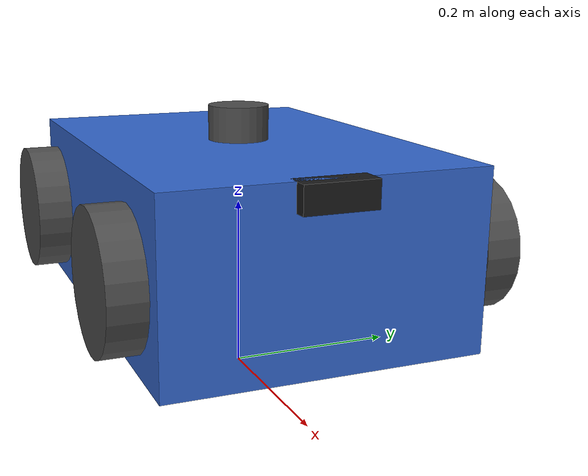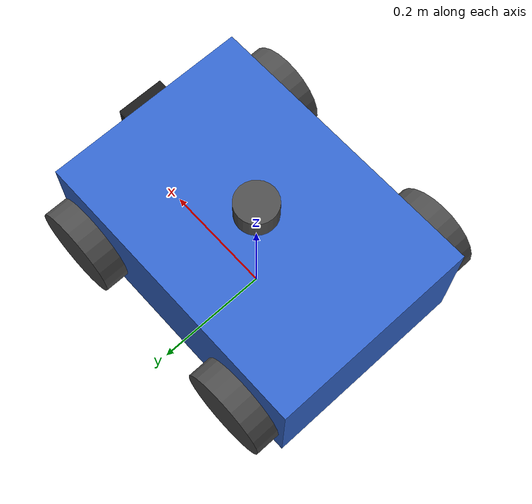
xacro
<?xml version="1.0"?>
<!--
  ScottBot URDF — UCR food delivery robot
  Mecanum-wheel holonomic base with camera and 2-D LIDAR for Gazebo simulation.
-->
<robot xmlns:xacro="http://www.ros.org/wiki/xacro" name="scottbot">

  <!-- ==================== Properties ==================== -->
  <xacro:property name="body_length"  value="0.50"/>
  <xacro:property name="body_width"   value="0.35"/>
  <xacro:property name="body_height"  value="0.20"/>
  <xacro:property name="body_mass"    value="10.0"/>

  <xacro:property name="wheel_radius" value="0.075"/>
  <xacro:property name="wheel_width"  value="0.04"/>
  <xacro:property name="wheel_mass"   value="0.5"/>
  <xacro:property name="wheel_separation" value="0.40"/>  <!-- lateral distance between left & right wheels -->
  <xacro:property name="wheelbase"          value="0.34"/>  <!-- longitudinal distance between front & rear axles -->

  <!-- ==================== Materials ==================== -->
  <material name="blue">
    <color rgba="0.2 0.4 0.8 1.0"/>
  </material>
  <material name="dark_grey">
    <color rgba="0.3 0.3 0.3 1.0"/>
  </material>
  <material name="black">
    <color rgba="0.1 0.1 0.1 1.0"/>
  </material>

  <!-- ==================== Macros ==================== -->

  <!-- Inertia helpers -->
  <xacro:macro name="box_inertia" params="m x y z">
    <inertial>
      <mass value="${m}"/>
      <inertia ixx="${m*(y*y+z*z)/12}" ixy="0" ixz="0"
               iyy="${m*(x*x+z*z)/12}" iyz="0"
               izz="${m*(x*x+y*y)/12}"/>
    </inertial>
  </xacro:macro>

  <xacro:macro name="cylinder_inertia" params="m r h">
    <inertial>
      <mass value="${m}"/>
      <inertia ixx="${m*(3*r*r+h*h)/12}" ixy="0" ixz="0"
               iyy="${m*(3*r*r+h*h)/12}" iyz="0"
               izz="${m*r*r/2}"/>
    </inertial>
  </xacro:macro>

  <xacro:macro name="sphere_inertia" params="m r">
    <inertial>
      <mass value="${m}"/>
      <inertia ixx="${2*m*r*r/5}" ixy="0" ixz="0"
               iyy="${2*m*r*r/5}" iyz="0"
               izz="${2*m*r*r/5}"/>
    </inertial>
  </xacro:macro>

  <!-- Mecanum wheel macro (4 corners) -->
  <xacro:macro name="mecanum_wheel" params="prefix x_offset y_offset">
    <link name="${prefix}_wheel_link">
      <visual>
        <geometry>
          <cylinder radius="${wheel_radius}" length="${wheel_width}"/>
        </geometry>
        <material name="dark_grey"/>
      </visual>
      <collision>
        <geometry>
          <sphere radius="${wheel_radius}"/>
        </geometry>
        <surface>
          <friction>
            <ode>
              <mu>0.1</mu>
              <mu2>0.1</mu2>
              <slip1>1.0</slip1>
              <slip2>1.0</slip2>
            </ode>
          </friction>
        </surface>
      </collision>
      <xacro:cylinder_inertia m="${wheel_mass}" r="${wheel_radius}" h="${wheel_width}"/>
    </link>

    <joint name="${prefix}_wheel_joint" type="continuous">
      <parent link="base_link"/>
      <child link="${prefix}_wheel_link"/>
      <origin xyz="${x_offset} ${y_offset} 0" rpy="${-pi/2} 0 0"/>
      <axis xyz="0 0 1"/>
      <dynamics damping="0.05" friction="0.05"/>
    </joint>
  </xacro:macro>

  <!-- ==================== Links & Joints ==================== -->

  <!-- Footprint (ground-level reference) -->
  <link name="base_footprint"/>

  <!-- Base link (chassis) -->
  <link name="base_link">
    <visual>
      <geometry>
        <box size="${body_length} ${body_width} ${body_height}"/>
      </geometry>
      <material name="blue"/>
    </visual>
    <collision>
      <geometry>
        <box size="${body_length} ${body_width} ${body_height}"/>
      </geometry>
    </collision>
    <xacro:box_inertia m="${body_mass}" x="${body_length}" y="${body_width}" z="${body_height}"/>
  </link>

  <joint name="base_footprint_joint" type="fixed">
    <parent link="base_footprint"/>
    <child link="base_link"/>
    <origin xyz="0 0 ${wheel_radius + body_height/2}" rpy="0 0 0"/>
  </joint>

  <!-- Mecanum wheels (front-left, front-right, rear-left, rear-right) -->
  <xacro:mecanum_wheel prefix="front_left"  x_offset="${wheelbase/2}"  y_offset="${wheel_separation/2}"/>
  <xacro:mecanum_wheel prefix="front_right" x_offset="${wheelbase/2}"  y_offset="${-wheel_separation/2}"/>
  <xacro:mecanum_wheel prefix="rear_left"   x_offset="${-wheelbase/2}" y_offset="${wheel_separation/2}"/>
  <xacro:mecanum_wheel prefix="rear_right"  x_offset="${-wheelbase/2}" y_offset="${-wheel_separation/2}"/>

  <!-- ==================== Sensors ==================== -->

  <!-- Camera -->
  <link name="camera_link">
    <visual>
      <geometry>
        <box size="0.03 0.08 0.03"/>
      </geometry>
      <material name="black"/>
    </visual>
    <collision>
      <geometry>
        <box size="0.03 0.08 0.03"/>
      </geometry>
    </collision>
    <xacro:box_inertia m="0.05" x="0.03" y="0.08" z="0.03"/>
  </link>

  <joint name="camera_joint" type="fixed">
    <parent link="base_link"/>
    <child link="camera_link"/>
    <origin xyz="${body_length/2} 0 ${body_height/2 - 0.015}" rpy="0 0 0"/>
  </joint>

  <!-- Camera optical frame (Z-forward convention) -->
  <link name="camera_optical_link"/>

  <joint name="camera_optical_joint" type="fixed">
    <parent link="camera_link"/>
    <child link="camera_optical_link"/>
    <origin xyz="0 0 0" rpy="${-pi/2} 0 ${-pi/2}"/>
  </joint>

  <!-- LIDAR -->
  <link name="lidar_link">
    <visual>
      <geometry>
        <cylinder radius="0.035" length="0.04"/>
      </geometry>
      <material name="dark_grey"/>
    </visual>
    <collision>
      <geometry>
        <cylinder radius="0.035" length="0.04"/>
      </geometry>
    </collision>
    <xacro:cylinder_inertia m="0.15" r="0.035" h="0.04"/>
  </link>

  <joint name="lidar_joint" type="fixed">
    <parent link="base_link"/>
    <child link="lidar_link"/>
    <origin xyz="0 0 ${body_height/2 + 0.02}" rpy="0 0 0"/>
  </joint>

  <!-- ==================== Gazebo-specific ==================== -->

  <!-- Chassis colour in Gazebo (OGRE material) -->
  <gazebo reference="base_link">
    <material>Gazebo/Blue</material>
  </gazebo>
  <gazebo reference="front_left_wheel_link">
    <material>Gazebo/DarkGrey</material>
    <mu1>0.1</mu1>
    <mu2>0.1</mu2>
  </gazebo>
  <gazebo reference="front_right_wheel_link">
    <material>Gazebo/DarkGrey</material>
    <mu1>0.1</mu1>
    <mu2>0.1</mu2>
  </gazebo>
  <gazebo reference="rear_left_wheel_link">
    <material>Gazebo/DarkGrey</material>
    <mu1>0.1</mu1>
    <mu2>0.1</mu2>
  </gazebo>
  <gazebo reference="rear_right_wheel_link">
    <material>Gazebo/DarkGrey</material>
    <mu1>0.1</mu1>
    <mu2>0.1</mu2>
  </gazebo>

  <!-- ===== Planar-move controller for mecanum / holonomic drive ===== -->
  <!--
    libgazebo_ros_planar_move gives true omnidirectional motion:
    it listens on /cmd_vel (linear.x, linear.y, angular.z) and
    publishes /odom, exactly like a real mecanum base would.
  -->
  <gazebo>
    <plugin name="planar_move" filename="libgazebo_ros_planar_move.so">
      <ros>
        <namespace>/</namespace>
      </ros>
      <update_rate>50</update_rate>

      <command_topic>cmd_vel</command_topic>
      <odometry_topic>odom</odometry_topic>
      <odometry_frame>odom</odometry_frame>
      <robot_base_frame>base_footprint</robot_base_frame>

      <publish_odom>true</publish_odom>
      <publish_odom_tf>true</publish_odom_tf>
    </plugin>
  </gazebo>

  <!-- ===== Camera plugin (replaces camera_node) ===== -->
  <gazebo reference="camera_link">
    <sensor name="camera_sensor" type="camera">
      <always_on>true</always_on>
      <update_rate>10.0</update_rate>
      <visualize>true</visualize>
      <camera>
        <horizontal_fov>1.089</horizontal_fov>
        <image>
          <width>640</width>
          <height>480</height>
          <format>R8G8B8</format>
        </image>
        <clip>
          <near>0.05</near>
          <far>50.0</far>
        </clip>
      </camera>
      <plugin name="camera_plugin" filename="libgazebo_ros_camera.so">
        <ros>
          <namespace>/</namespace>
        </ros>
        <camera_name>camera</camera_name>
        <frame_name>camera_optical_link</frame_name>
        <hack_baseline>0.0</hack_baseline>
      </plugin>
    </sensor>
  </gazebo>

  <!-- ===== LIDAR plugin (replaces lidar_node) ===== -->
  <gazebo reference="lidar_link">
    <sensor name="lidar_sensor" type="ray">
      <always_on>true</always_on>
      <update_rate>10.0</update_rate>
      <visualize>true</visualize>
      <ray>
        <scan>
          <horizontal>
            <samples>360</samples>
            <resolution>1</resolution>
            <min_angle>-3.14159</min_angle>
            <max_angle>3.14159</max_angle>
          </horizontal>
        </scan>
        <range>
          <min>0.12</min>
          <max>12.0</max>
          <resolution>0.01</resolution>
        </range>
        <noise>
          <type>gaussian</type>
          <mean>0.0</mean>
          <stddev>0.01</stddev>
        </noise>
      </ray>
      <plugin name="lidar_plugin" filename="libgazebo_ros_ray_sensor.so">
        <ros>
          <namespace>/</namespace>
          <remapping>~/out:=scan</remapping>
        </ros>
        <output_type>sensor_msgs/LaserScan</output_type>
        <frame_name>lidar_link</frame_name>
      </plugin>
    </sensor>
  </gazebo>

</robot>
